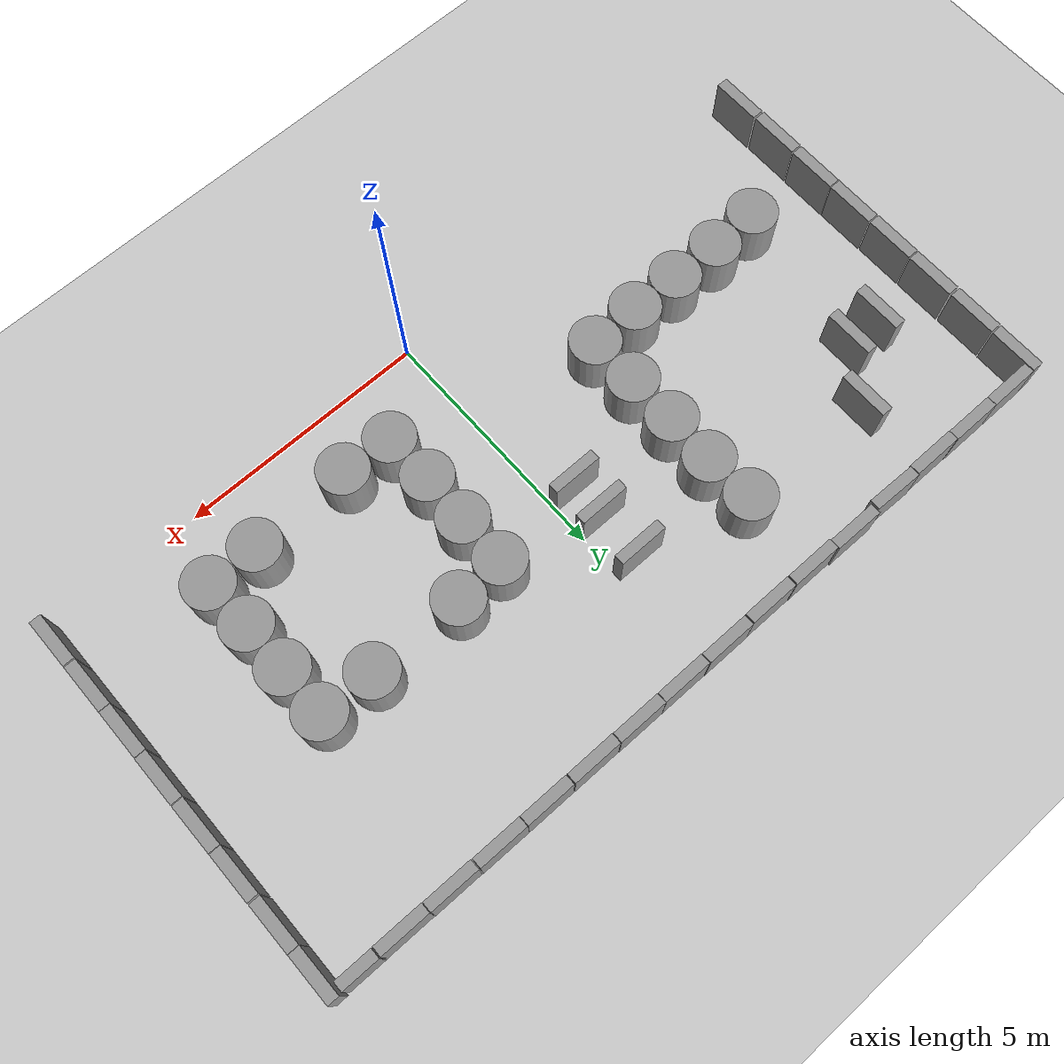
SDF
<sdf version="1.6">
 <world name="default">
  <model name="ground_plane">
   <static>1</static>
   <static>1</static>
   <link name="link">
    <collision name="collision">
     <geometry><plane><normal>0 0 1</normal><size>100 100</size></plane></geometry>
     <surface><friction><ode><mu>100</mu><mu2>50</mu2></ode></friction></surface>
    </collision>
    <visual name="visual">
     <cast_shadows>0</cast_shadows>
     <geometry><plane><normal>0 0 1</normal><size>100 100</size></plane></geometry>
     <material>
      <script><uri>file://media/materials/scripts/gazebo.material</uri><name>Gazebo/Grey</name></script>
     </material>
    </visual>
   </link>
  </model>
  <model name="unit_box_clone">
   <pose>-7.49845 8.11988 0.5 0 -0 0.000178</pose>
   <link name="link">
    <inertial>
     <mass>1</mass>
     <inertia>
      <ixx>0.166667</ixx>
      <ixy>0</ixy>
      <ixz>0</ixz>
      <iyy>0.166667</iyy>
      <iyz>0</iyz>
      <izz>0.166667</izz>
     </inertia>
    </inertial>
    <collision name="collision"><geometry><box><size>1 0.210541 1</size></box></geometry></collision>
    <visual name="visual">
     <geometry><box><size>1 0.210541 1</size></box></geometry>
     <material>
      <script><name>Gazebo/Grey</name><uri>file://media/materials/scripts/gazebo.material</uri></script>
     </material>
    </visual>
   </link>
  </model>
  <model name="unit_box_clone_0">
   <pose>-6.49729 8.11969 0.5 0 -1e-06 -0.002353</pose>
   <link name="link">
    <inertial>
     <mass>1</mass>
     <inertia>
      <ixx>0.166667</ixx>
      <ixy>0</ixy>
      <ixz>0</ixz>
      <iyy>0.166667</iyy>
      <iyz>0</iyz>
      <izz>0.166667</izz>
     </inertia>
    </inertial>
    <collision name="collision"><geometry><box><size>1 0.210541 1</size></box></geometry></collision>
    <visual name="visual">
     <geometry><box><size>1 0.210541 1</size></box></geometry>
     <material>
      <script><name>Gazebo/Grey</name><uri>file://media/materials/scripts/gazebo.material</uri></script>
     </material>
    </visual>
   </link>
  </model>
  <model name="unit_box_clone_1">
   <pose>-5.49732 8.10842 0.5 0 0 -0.002354</pose>
   <link name="link">
    <inertial>
     <mass>1</mass>
     <inertia>
      <ixx>0.166667</ixx>
      <ixy>0</ixy>
      <ixz>0</ixz>
      <iyy>0.166667</iyy>
      <iyz>0</iyz>
      <izz>0.166667</izz>
     </inertia>
    </inertial>
    <collision name="collision"><geometry><box><size>1 0.210541 1</size></box></geometry></collision>
    <visual name="visual">
     <geometry><box><size>1 0.210541 1</size></box></geometry>
     <material>
      <script><name>Gazebo/Grey</name><uri>file://media/materials/scripts/gazebo.material</uri></script>
     </material>
    </visual>
   </link>
  </model>
  <model name="unit_box_clone_2">
   <pose>-4.49485 8.1106 0.5 -0 -0 -0.02677</pose>
   <link name="link">
    <inertial>
     <mass>1</mass>
     <inertia>
      <ixx>0.166667</ixx>
      <ixy>0</ixy>
      <ixz>0</ixz>
      <iyy>0.166667</iyy>
      <iyz>0</iyz>
      <izz>0.166667</izz>
     </inertia>
    </inertial>
    <collision name="collision"><geometry><box><size>1 0.210541 1</size></box></geometry></collision>
    <visual name="visual">
     <geometry><box><size>1 0.210541 1</size></box></geometry>
     <material>
      <script><name>Gazebo/Grey</name><uri>file://media/materials/scripts/gazebo.material</uri></script>
     </material>
    </visual>
   </link>
  </model>
  <model name="unit_box_clone_3">
   <pose>-3.46835 8.1504 0.5 -1e-06 1e-06 -0.007775</pose>
   <link name="link">
    <inertial>
     <mass>1</mass>
     <inertia>
      <ixx>0.166667</ixx>
      <ixy>0</ixy>
      <ixz>0</ixz>
      <iyy>0.166667</iyy>
      <iyz>0</iyz>
      <izz>0.166667</izz>
     </inertia>
    </inertial>
    <collision name="collision"><geometry><box><size>1 0.210541 1</size></box></geometry></collision>
    <visual name="visual">
     <geometry><box><size>1 0.210541 1</size></box></geometry>
     <material>
      <script><name>Gazebo/Grey</name><uri>file://media/materials/scripts/gazebo.material</uri></script>
     </material>
    </visual>
   </link>
  </model>
  <model name="unit_box_clone_4">
   <pose>-2.46316 8.11857 0.5 0 -0 0.000178</pose>
   <link name="link">
    <inertial>
     <mass>1</mass>
     <inertia>
      <ixx>0.166667</ixx>
      <ixy>0</ixy>
      <ixz>0</ixz>
      <iyy>0.166667</iyy>
      <iyz>0</iyz>
      <izz>0.166667</izz>
     </inertia>
    </inertial>
    <collision name="collision"><geometry><box><size>1 0.210541 1</size></box></geometry></collision>
    <visual name="visual">
     <geometry><box><size>1 0.210541 1</size></box></geometry>
     <material>
      <script><name>Gazebo/Grey</name><uri>file://media/materials/scripts/gazebo.material</uri></script>
     </material>
    </visual>
   </link>
  </model>
  <model name="unit_box_clone_5">
   <pose>-1.44425 8.11191 0.5 0 -0 0.000178</pose>
   <link name="link">
    <inertial>
     <mass>1</mass>
     <inertia>
      <ixx>0.166667</ixx>
      <ixy>0</ixy>
      <ixz>0</ixz>
      <iyy>0.166667</iyy>
      <iyz>0</iyz>
      <izz>0.166667</izz>
     </inertia>
    </inertial>
    <collision name="collision"><geometry><box><size>1 0.210541 1</size></box></geometry></collision>
    <visual name="visual">
     <geometry><box><size>1 0.210541 1</size></box></geometry>
     <material>
      <script><name>Gazebo/Grey</name><uri>file://media/materials/scripts/gazebo.material</uri></script>
     </material>
    </visual>
   </link>
  </model>
  <model name="unit_box_clone_6">
   <pose>-0.418683 8.11856 0.5 0 -0 0.000178</pose>
   <link name="link">
    <inertial>
     <mass>1</mass>
     <inertia>
      <ixx>0.166667</ixx>
      <ixy>0</ixy>
      <ixz>0</ixz>
      <iyy>0.166667</iyy>
      <iyz>0</iyz>
      <izz>0.166667</izz>
     </inertia>
    </inertial>
    <collision name="collision"><geometry><box><size>1 0.210541 1</size></box></geometry></collision>
    <visual name="visual">
     <geometry><box><size>1 0.210541 1</size></box></geometry>
     <material>
      <script><name>Gazebo/Grey</name><uri>file://media/materials/scripts/gazebo.material</uri></script>
     </material>
    </visual>
   </link>
  </model>
  <model name="unit_box_clone_7">
   <pose>0.592836 8.11143 0.5 0 -0 0.000178</pose>
   <link name="link">
    <inertial>
     <mass>1</mass>
     <inertia>
      <ixx>0.166667</ixx>
      <ixy>0</ixy>
      <ixz>0</ixz>
      <iyy>0.166667</iyy>
      <iyz>0</iyz>
      <izz>0.166667</izz>
     </inertia>
    </inertial>
    <collision name="collision"><geometry><box><size>1 0.210541 1</size></box></geometry></collision>
    <visual name="visual">
     <geometry><box><size>1 0.210541 1</size></box></geometry>
     <material>
      <script><name>Gazebo/Grey</name><uri>file://media/materials/scripts/gazebo.material</uri></script>
     </material>
    </visual>
   </link>
  </model>
  <model name="unit_box_clone_8">
   <pose>1.60043 8.10994 0.5 0 -0 0.000178</pose>
   <link name="link">
    <inertial>
     <mass>1</mass>
     <inertia>
      <ixx>0.166667</ixx>
      <ixy>0</ixy>
      <ixz>0</ixz>
      <iyy>0.166667</iyy>
      <iyz>0</iyz>
      <izz>0.166667</izz>
     </inertia>
    </inertial>
    <collision name="collision"><geometry><box><size>1 0.210541 1</size></box></geometry></collision>
    <visual name="visual">
     <geometry><box><size>1 0.210541 1</size></box></geometry>
     <material>
      <script><name>Gazebo/Grey</name><uri>file://media/materials/scripts/gazebo.material</uri></script>
     </material>
    </visual>
   </link>
  </model>
  <model name="unit_box_clone_9">
   <pose>2.60987 8.10275 0.5 0 -0 0.000178</pose>
   <link name="link">
    <inertial>
     <mass>1</mass>
     <inertia>
      <ixx>0.166667</ixx>
      <ixy>0</ixy>
      <ixz>0</ixz>
      <iyy>0.166667</iyy>
      <iyz>0</iyz>
      <izz>0.166667</izz>
     </inertia>
    </inertial>
    <collision name="collision"><geometry><box><size>1 0.210541 1</size></box></geometry></collision>
    <visual name="visual">
     <geometry><box><size>1 0.210541 1</size></box></geometry>
     <material>
      <script><name>Gazebo/Grey</name><uri>file://media/materials/scripts/gazebo.material</uri></script>
     </material>
    </visual>
   </link>
  </model>
  <model name="unit_box_clone_10">
   <pose>3.62649 8.09916 0.5 0 -0 0.000178</pose>
   <link name="link">
    <inertial>
     <mass>1</mass>
     <inertia>
      <ixx>0.166667</ixx>
      <ixy>0</ixy>
      <ixz>0</ixz>
      <iyy>0.166667</iyy>
      <iyz>0</iyz>
      <izz>0.166667</izz>
     </inertia>
    </inertial>
    <collision name="collision"><geometry><box><size>1 0.210541 1</size></box></geometry></collision>
    <visual name="visual">
     <geometry><box><size>1 0.210541 1</size></box></geometry>
     <material>
      <script><name>Gazebo/Grey</name><uri>file://media/materials/scripts/gazebo.material</uri></script>
     </material>
    </visual>
   </link>
  </model>
  <model name="unit_box_clone_11">
   <pose>4.63309 8.09539 0.5 0 0 -0.003434</pose>
   <link name="link">
    <inertial>
     <mass>1</mass>
     <inertia>
      <ixx>0.166667</ixx>
      <ixy>0</ixy>
      <ixz>0</ixz>
      <iyy>0.166667</iyy>
      <iyz>0</iyz>
      <izz>0.166667</izz>
     </inertia>
    </inertial>
    <collision name="collision"><geometry><box><size>1 0.210541 1</size></box></geometry></collision>
    <visual name="visual">
     <geometry><box><size>1 0.210541 1</size></box></geometry>
     <material>
      <script><name>Gazebo/Grey</name><uri>file://media/materials/scripts/gazebo.material</uri></script>
     </material>
    </visual>
   </link>
  </model>
  <model name="unit_box_0_clone_0">
   <pose>8.11522 6.68458 0.5 -0 -0 -0.000239</pose>
   <link name="link">
    <inertial>
     <mass>1</mass>
     <inertia>
      <ixx>0.166667</ixx>
      <ixy>0</ixy>
      <ixz>0</ixz>
      <iyy>0.166667</iyy>
      <iyz>0</iyz>
      <izz>0.166667</izz>
     </inertia>
    </inertial>
    <collision name="collision"><geometry><box><size>0.230819 1 1</size></box></geometry></collision>
    <visual name="visual">
     <geometry><box><size>0.230819 1 1</size></box></geometry>
     <material>
      <script><name>Gazebo/Grey</name><uri>file://media/materials/scripts/gazebo.material</uri></script>
     </material>
    </visual>
   </link>
  </model>
  <model name="unit_box_0_clone_1">
   <pose>8.11915 5.6517 0.5 0 -0 0.000138</pose>
   <link name="link">
    <inertial>
     <mass>1</mass>
     <inertia>
      <ixx>0.166667</ixx>
      <ixy>0</ixy>
      <ixz>0</ixz>
      <iyy>0.166667</iyy>
      <iyz>0</iyz>
      <izz>0.166667</izz>
     </inertia>
    </inertial>
    <collision name="collision"><geometry><box><size>0.230819 1 1</size></box></geometry></collision>
    <visual name="visual">
     <geometry><box><size>0.230819 1 1</size></box></geometry>
     <material>
      <script><name>Gazebo/Grey</name><uri>file://media/materials/scripts/gazebo.material</uri></script>
     </material>
    </visual>
   </link>
  </model>
  <model name="unit_box_0_clone_2">
   <pose>8.11914 4.64016 0.5 0 -0 0.000232</pose>
   <link name="link">
    <inertial>
     <mass>1</mass>
     <inertia>
      <ixx>0.166667</ixx>
      <ixy>0</ixy>
      <ixz>0</ixz>
      <iyy>0.166667</iyy>
      <iyz>0</iyz>
      <izz>0.166667</izz>
     </inertia>
    </inertial>
    <collision name="collision"><geometry><box><size>0.230819 1 1</size></box></geometry></collision>
    <visual name="visual">
     <geometry><box><size>0.230819 1 1</size></box></geometry>
     <material>
      <script><name>Gazebo/Grey</name><uri>file://media/materials/scripts/gazebo.material</uri></script>
     </material>
    </visual>
   </link>
  </model>
  <model name="unit_box_0_clone_3">
   <pose>8.11914 3.62228 0.5 0 -0 0.000213</pose>
   <link name="link">
    <inertial>
     <mass>1</mass>
     <inertia>
      <ixx>0.166667</ixx>
      <ixy>0</ixy>
      <ixz>0</ixz>
      <iyy>0.166667</iyy>
      <iyz>0</iyz>
      <izz>0.166667</izz>
     </inertia>
    </inertial>
    <collision name="collision"><geometry><box><size>0.230819 1 1</size></box></geometry></collision>
    <visual name="visual">
     <geometry><box><size>0.230819 1 1</size></box></geometry>
     <material>
      <script><name>Gazebo/Grey</name><uri>file://media/materials/scripts/gazebo.material</uri></script>
     </material>
    </visual>
   </link>
  </model>
  <model name="unit_box_0_clone_4">
   <pose>8.11332 2.61063 0.5 0 0 -0.001021</pose>
   <link name="link">
    <inertial>
     <mass>1</mass>
     <inertia>
      <ixx>0.166667</ixx>
      <ixy>0</ixy>
      <ixz>0</ixz>
      <iyy>0.166667</iyy>
      <iyz>0</iyz>
      <izz>0.166667</izz>
     </inertia>
    </inertial>
    <collision name="collision"><geometry><box><size>0.230819 1 1</size></box></geometry></collision>
    <visual name="visual">
     <geometry><box><size>0.230819 1 1</size></box></geometry>
     <material>
      <script><name>Gazebo/Grey</name><uri>file://media/materials/scripts/gazebo.material</uri></script>
     </material>
    </visual>
   </link>
  </model>
  <model name="unit_box_0_clone_5">
   <pose>8.11277 1.59919 0.5 0 -0 0.000213</pose>
   <link name="link">
    <inertial>
     <mass>1</mass>
     <inertia>
      <ixx>0.166667</ixx>
      <ixy>0</ixy>
      <ixz>0</ixz>
      <iyy>0.166667</iyy>
      <iyz>0</iyz>
      <izz>0.166667</izz>
     </inertia>
    </inertial>
    <collision name="collision"><geometry><box><size>0.230819 1 1</size></box></geometry></collision>
    <visual name="visual">
     <geometry><box><size>0.230819 1 1</size></box></geometry>
     <material>
      <script><name>Gazebo/Grey</name><uri>file://media/materials/scripts/gazebo.material</uri></script>
     </material>
    </visual>
   </link>
  </model>
  <model name="unit_box_0_clone_6">
   <pose>8.11277 0.574938 0.5 0 -0 0.000213</pose>
   <link name="link">
    <inertial>
     <mass>1</mass>
     <inertia>
      <ixx>0.166667</ixx>
      <ixy>0</ixy>
      <ixz>0</ixz>
      <iyy>0.166667</iyy>
      <iyz>0</iyz>
      <izz>0.166667</izz>
     </inertia>
    </inertial>
    <collision name="collision"><geometry><box><size>0.230819 1 1</size></box></geometry></collision>
    <visual name="visual">
     <geometry><box><size>0.230819 1 1</size></box></geometry>
     <material>
      <script><name>Gazebo/Grey</name><uri>file://media/materials/scripts/gazebo.material</uri></script>
     </material>
    </visual>
   </link>
  </model>
  <model name="unit_box_0_clone_4_clone">
   <pose>-8.12647 7.71769 0.5 0 -0 0.000213</pose>
   <link name="link">
    <inertial>
     <mass>1</mass>
     <inertia>
      <ixx>0.166667</ixx>
      <ixy>0</ixy>
      <ixz>0</ixz>
      <iyy>0.166667</iyy>
      <iyz>0</iyz>
      <izz>0.166667</izz>
     </inertia>
    </inertial>
    <collision name="collision"><geometry><box><size>0.230819 1 1</size></box></geometry></collision>
    <visual name="visual">
     <geometry><box><size>0.230819 1 1</size></box></geometry>
     <material>
      <script><name>Gazebo/Grey</name><uri>file://media/materials/scripts/gazebo.material</uri></script>
     </material>
    </visual>
   </link>
  </model>
  <model name="unit_box_0_clone_4_clone_0">
   <pose>-8.13281 6.68715 0.5 0 -0 0.000213</pose>
   <link name="link">
    <inertial>
     <mass>1</mass>
     <inertia>
      <ixx>0.166667</ixx>
      <ixy>0</ixy>
      <ixz>0</ixz>
      <iyy>0.166667</iyy>
      <iyz>0</iyz>
      <izz>0.166667</izz>
     </inertia>
    </inertial>
    <collision name="collision"><geometry><box><size>0.230819 1 1</size></box></geometry></collision>
    <visual name="visual">
     <geometry><box><size>0.230819 1 1</size></box></geometry>
     <material>
      <script><name>Gazebo/Grey</name><uri>file://media/materials/scripts/gazebo.material</uri></script>
     </material>
    </visual>
   </link>
  </model>
  <model name="unit_box_0_clone_4_clone_1">
   <pose>-8.12606 5.64722 0.5 0 -0 0.000213</pose>
   <link name="link">
    <inertial>
     <mass>1</mass>
     <inertia>
      <ixx>0.166667</ixx>
      <ixy>0</ixy>
      <ixz>0</ixz>
      <iyy>0.166667</iyy>
      <iyz>0</iyz>
      <izz>0.166667</izz>
     </inertia>
    </inertial>
    <collision name="collision"><geometry><box><size>0.230819 1 1</size></box></geometry></collision>
    <visual name="visual">
     <geometry><box><size>0.230819 1 1</size></box></geometry>
     <material>
      <script><name>Gazebo/Grey</name><uri>file://media/materials/scripts/gazebo.material</uri></script>
     </material>
    </visual>
   </link>
  </model>
  <model name="unit_box_0_clone_4_clone_2">
   <pose>-8.12607 4.6208 0.5 0 -0 0.000213</pose>
   <link name="link">
    <inertial>
     <mass>1</mass>
     <inertia>
      <ixx>0.166667</ixx>
      <ixy>0</ixy>
      <ixz>0</ixz>
      <iyy>0.166667</iyy>
      <iyz>0</iyz>
      <izz>0.166667</izz>
     </inertia>
    </inertial>
    <collision name="collision"><geometry><box><size>0.230819 1 1</size></box></geometry></collision>
    <visual name="visual">
     <geometry><box><size>0.230819 1 1</size></box></geometry>
     <material>
      <script><name>Gazebo/Grey</name><uri>file://media/materials/scripts/gazebo.material</uri></script>
     </material>
    </visual>
   </link>
  </model>
  <model name="unit_box_0_clone_4_clone_3">
   <pose>-8.11932 3.59437 0.5 0 -0 0.000213</pose>
   <link name="link">
    <inertial>
     <mass>1</mass>
     <inertia>
      <ixx>0.166667</ixx>
      <ixy>0</ixy>
      <ixz>0</ixz>
      <iyy>0.166667</iyy>
      <iyz>0</iyz>
      <izz>0.166667</izz>
     </inertia>
    </inertial>
    <collision name="collision"><geometry><box><size>0.230819 1 1</size></box></geometry></collision>
    <visual name="visual">
     <geometry><box><size>0.230819 1 1</size></box></geometry>
     <material>
      <script><name>Gazebo/Grey</name><uri>file://media/materials/scripts/gazebo.material</uri></script>
     </material>
    </visual>
   </link>
  </model>
  <model name="unit_box_0_clone_4_clone_4">
   <pose>-8.11932 2.57471 0.5 0 -0 0.000213</pose>
   <link name="link">
    <inertial>
     <mass>1</mass>
     <inertia>
      <ixx>0.166667</ixx>
      <ixy>0</ixy>
      <ixz>0</ixz>
      <iyy>0.166667</iyy>
      <iyz>0</iyz>
      <izz>0.166667</izz>
     </inertia>
    </inertial>
    <collision name="collision"><geometry><box><size>0.230819 1 1</size></box></geometry></collision>
    <visual name="visual">
     <geometry><box><size>0.230819 1 1</size></box></geometry>
     <material>
      <script><name>Gazebo/Grey</name><uri>file://media/materials/scripts/gazebo.material</uri></script>
     </material>
    </visual>
   </link>
  </model>
  <model name="unit_box_0_clone_4_clone_5">
   <pose>-8.12608 1.54157 0.5 0 -0 0.000213</pose>
   <link name="link">
    <inertial>
     <mass>1</mass>
     <inertia>
      <ixx>0.166667</ixx>
      <ixy>0</ixy>
      <ixz>0</ixz>
      <iyy>0.166667</iyy>
      <iyz>0</iyz>
      <izz>0.166667</izz>
     </inertia>
    </inertial>
    <collision name="collision"><geometry><box><size>0.230819 1 1</size></box></geometry></collision>
    <visual name="visual">
     <geometry><box><size>0.230819 1 1</size></box></geometry>
     <material>
      <script><name>Gazebo/Grey</name><uri>file://media/materials/scripts/gazebo.material</uri></script>
     </material>
    </visual>
   </link>
  </model>
  <model name="unit_box_0_clone_4_clone_6">
   <pose>-8.11933 0.50163 0.5 0 -0 0.000213</pose>
   <link name="link">
    <inertial>
     <mass>1</mass>
     <inertia>
      <ixx>0.166667</ixx>
      <ixy>0</ixy>
      <ixz>0</ixz>
      <iyy>0.166667</iyy>
      <iyz>0</iyz>
      <izz>0.166667</izz>
     </inertia>
    </inertial>
    <collision name="collision"><geometry><box><size>0.230819 1 1</size></box></geometry></collision>
    <visual name="visual">
     <geometry><box><size>0.230819 1 1</size></box></geometry>
     <material>
      <script><name>Gazebo/Grey</name><uri>file://media/materials/scripts/gazebo.material</uri></script>
     </material>
    </visual>
   </link>
  </model>
  <model name="unit_box_0_clone_0_clone">
   <pose>8.11438 7.69322 0.5 0 -0 0.00012</pose>
   <link name="link">
    <inertial>
     <mass>1</mass>
     <inertia>
      <ixx>0.166667</ixx>
      <ixy>0</ixy>
      <ixz>0</ixz>
      <iyy>0.166667</iyy>
      <iyz>0</iyz>
      <izz>0.166667</izz>
     </inertia>
    </inertial>
    <collision name="collision"><geometry><box><size>0.230819 1 1</size></box></geometry></collision>
    <visual name="visual">
     <geometry><box><size>0.230819 1 1</size></box></geometry>
     <material>
      <script><name>Gazebo/Grey</name><uri>file://media/materials/scripts/gazebo.material</uri></script>
     </material>
    </visual>
   </link>
  </model>
  <model name="unit_box_clone_11_clone">
   <pose>5.6544 8.08375 0.5 1e-06 -1e-06 -0.0029</pose>
   <link name="link">
    <inertial>
     <mass>1</mass>
     <inertia>
      <ixx>0.166667</ixx>
      <ixy>0</ixy>
      <ixz>0</ixz>
      <iyy>0.166667</iyy>
      <iyz>0</iyz>
      <izz>0.166667</izz>
     </inertia>
    </inertial>
    <collision name="collision"><geometry><box><size>1 0.210541 1</size></box></geometry></collision>
    <visual name="visual">
     <geometry><box><size>1 0.210541 1</size></box></geometry>
     <material>
      <script><name>Gazebo/Grey</name><uri>file://media/materials/scripts/gazebo.material</uri></script>
     </material>
    </visual>
   </link>
  </model>
  <model name="unit_box_clone_11_clone_0">
   <pose>6.66439 8.07358 0.5 0 0 -0.003356</pose>
   <link name="link">
    <inertial>
     <mass>1</mass>
     <inertia>
      <ixx>0.166667</ixx>
      <ixy>0</ixy>
      <ixz>0</ixz>
      <iyy>0.166667</iyy>
      <iyz>0</iyz>
      <izz>0.166667</izz>
     </inertia>
    </inertial>
    <collision name="collision"><geometry><box><size>1 0.210541 1</size></box></geometry></collision>
    <visual name="visual">
     <geometry><box><size>1 0.210541 1</size></box></geometry>
     <material>
      <script><name>Gazebo/Grey</name><uri>file://media/materials/scripts/gazebo.material</uri></script>
     </material>
    </visual>
   </link>
  </model>
  <model name="unit_box_clone_11_clone_1_clone">
   <pose>7.56439 8.07324 0.5 0 1e-06 -0.004927</pose>
   <link name="link">
    <inertial>
     <mass>1</mass>
     <inertia>
      <ixx>0.166667</ixx>
      <ixy>0</ixy>
      <ixz>0</ixz>
      <iyy>0.166667</iyy>
      <iyz>0</iyz>
      <izz>0.166667</izz>
     </inertia>
    </inertial>
    <collision name="collision"><geometry><box><size>0.750223 0.210541 1</size></box></geometry></collision>
    <visual name="visual">
     <geometry><box><size>0.750223 0.210541 1</size></box></geometry>
     <material>
      <script><name>Gazebo/Grey</name><uri>file://media/materials/scripts/gazebo.material</uri></script>
     </material>
    </visual>
   </link>
  </model>
  <model name="unit_cylinder_clone_0_clone">
   <pose>1.51726 1.4877 0.499991 -0 -0 -0.002488</pose>
   <link name="link">
    <inertial>
     <mass>1</mass>
     <inertia><ixx>0.145833</ixx><ixy>0</ixy><ixz>0</ixz><iyy>0.145833</iyy><iyz>0</iyz><izz>0.125</izz></inertia>
    </inertial>
    <collision name="collision">
     <geometry><cylinder><radius>0.5</radius><length>1</length></cylinder></geometry>
    </collision>
    <visual name="visual">
     <geometry><cylinder><radius>0.5</radius><length>1</length></cylinder></geometry>
     <material>
      <script><name>Gazebo/Grey</name><uri>file://media/materials/scripts/gazebo.material</uri></script>
     </material>
    </visual>
   </link>
  </model>
  <model name="unit_cylinder_clone_0_clone_clone">
   <pose>1.48343 2.4873 0.499994 -3e-06 -1e-06 0.000788</pose>
   <link name="link">
    <inertial>
     <mass>1</mass>
     <inertia><ixx>0.145833</ixx><ixy>0</ixy><ixz>0</ixz><iyy>0.145833</iyy><iyz>0</iyz><izz>0.125</izz></inertia>
    </inertial>
    <collision name="collision">
     <geometry><cylinder><radius>0.5</radius><length>1</length></cylinder></geometry>
    </collision>
    <visual name="visual">
     <geometry><cylinder><radius>0.5</radius><length>1</length></cylinder></geometry>
     <material>
      <script><name>Gazebo/Grey</name><uri>file://media/materials/scripts/gazebo.material</uri></script>
     </material>
    </visual>
   </link>
  </model>
  <model name="unit_cylinder_clone_0_clone_clone_0">
   <pose>1.51714 3.48917 0.499994 -4e-06 -3e-06 0.000101</pose>
   <link name="link">
    <inertial>
     <mass>1</mass>
     <inertia><ixx>0.145833</ixx><ixy>0</ixy><ixz>0</ixz><iyy>0.145833</iyy><iyz>0</iyz><izz>0.125</izz></inertia>
    </inertial>
    <collision name="collision">
     <geometry><cylinder><radius>0.5</radius><length>1</length></cylinder></geometry>
    </collision>
    <visual name="visual">
     <geometry><cylinder><radius>0.5</radius><length>1</length></cylinder></geometry>
     <material>
      <script><name>Gazebo/Grey</name><uri>file://media/materials/scripts/gazebo.material</uri></script>
     </material>
    </visual>
   </link>
  </model>
  <model name="unit_cylinder_clone_0_clone_clone_1">
   <pose>1.51681 4.48917 0.5 0 0 -0.0001</pose>
   <link name="link">
    <inertial>
     <mass>1</mass>
     <inertia><ixx>0.145833</ixx><ixy>0</ixy><ixz>0</ixz><iyy>0.145833</iyy><iyz>0</iyz><izz>0.125</izz></inertia>
    </inertial>
    <collision name="collision">
     <geometry><cylinder><radius>0.5</radius><length>1</length></cylinder></geometry>
    </collision>
    <visual name="visual">
     <geometry><cylinder><radius>0.5</radius><length>1</length></cylinder></geometry>
     <material>
      <script><name>Gazebo/Grey</name><uri>file://media/materials/scripts/gazebo.material</uri></script>
     </material>
    </visual>
   </link>
  </model>
  <model name="unit_cylinder_clone_0_clone_clone_2">
   <pose>2.51555 1.41016 0.499994 -3e-06 -2e-06 -0.003965</pose>
   <link name="link">
    <inertial>
     <mass>1</mass>
     <inertia><ixx>0.145833</ixx><ixy>0</ixy><ixz>0</ixz><iyy>0.145833</iyy><iyz>0</iyz><izz>0.125</izz></inertia>
    </inertial>
    <collision name="collision">
     <geometry><cylinder><radius>0.5</radius><length>1</length></cylinder></geometry>
    </collision>
    <visual name="visual">
     <geometry><cylinder><radius>0.5</radius><length>1</length></cylinder></geometry>
     <material>
      <script><name>Gazebo/Grey</name><uri>file://media/materials/scripts/gazebo.material</uri></script>
     </material>
    </visual>
   </link>
  </model>
  <model name="unit_cylinder_clone_0_clone_clone_3">
   <pose>4.52533 1.49818 0.499994 -3e-06 -2e-06 0</pose>
   <link name="link">
    <inertial>
     <mass>1</mass>
     <inertia><ixx>0.145833</ixx><ixy>0</ixy><ixz>0</ixz><iyy>0.145833</iyy><iyz>0</iyz><izz>0.125</izz></inertia>
    </inertial>
    <collision name="collision">
     <geometry><cylinder><radius>0.5</radius><length>1</length></cylinder></geometry>
    </collision>
    <visual name="visual">
     <geometry><cylinder><radius>0.5</radius><length>1</length></cylinder></geometry>
     <material>
      <script><name>Gazebo/Grey</name><uri>file://media/materials/scripts/gazebo.material</uri></script>
     </material>
    </visual>
   </link>
  </model>
  <model name="unit_cylinder_clone_0_clone_clone_4">
   <pose>5.54013 1.51656 0.499996 -1e-06 0 -0.000814</pose>
   <link name="link">
    <inertial>
     <mass>1</mass>
     <inertia><ixx>0.145833</ixx><ixy>0</ixy><ixz>0</ixz><iyy>0.145833</iyy><iyz>0</iyz><izz>0.125</izz></inertia>
    </inertial>
    <collision name="collision">
     <geometry><cylinder><radius>0.5</radius><length>1</length></cylinder></geometry>
    </collision>
    <visual name="visual">
     <geometry><cylinder><radius>0.5</radius><length>1</length></cylinder></geometry>
     <material>
      <script><name>Gazebo/Grey</name><uri>file://media/materials/scripts/gazebo.material</uri></script>
     </material>
    </visual>
   </link>
  </model>
  <model name="unit_cylinder_clone_0_clone_clone_5">
   <pose>5.48689 2.51519 0.499997 3e-06 2e-06 0.000368</pose>
   <link name="link">
    <inertial>
     <mass>1</mass>
     <inertia><ixx>0.145833</ixx><ixy>0</ixy><ixz>0</ixz><iyy>0.145833</iyy><iyz>0</iyz><izz>0.125</izz></inertia>
    </inertial>
    <collision name="collision">
     <geometry><cylinder><radius>0.5</radius><length>1</length></cylinder></geometry>
    </collision>
    <visual name="visual">
     <geometry><cylinder><radius>0.5</radius><length>1</length></cylinder></geometry>
     <material>
      <script><name>Gazebo/Grey</name><uri>file://media/materials/scripts/gazebo.material</uri></script>
     </material>
    </visual>
   </link>
  </model>
  <model name="unit_cylinder_clone_0_clone_clone_6">
   <pose>5.488 3.51524 0.499993 -3e-06 1e-06 0.000266</pose>
   <link name="link">
    <inertial>
     <mass>1</mass>
     <inertia><ixx>0.145833</ixx><ixy>0</ixy><ixz>0</ixz><iyy>0.145833</iyy><iyz>0</iyz><izz>0.125</izz></inertia>
    </inertial>
    <collision name="collision">
     <geometry><cylinder><radius>0.5</radius><length>1</length></cylinder></geometry>
    </collision>
    <visual name="visual">
     <geometry><cylinder><radius>0.5</radius><length>1</length></cylinder></geometry>
     <material>
      <script><name>Gazebo/Grey</name><uri>file://media/materials/scripts/gazebo.material</uri></script>
     </material>
    </visual>
   </link>
  </model>
  <model name="unit_cylinder_clone_0_clone_clone_7">
   <pose>5.48818 4.51568 0.5 0 -0 0.001132</pose>
   <link name="link">
    <inertial>
     <mass>1</mass>
     <inertia><ixx>0.145833</ixx><ixy>0</ixy><ixz>0</ixz><iyy>0.145833</iyy><iyz>0</iyz><izz>0.125</izz></inertia>
    </inertial>
    <collision name="collision">
     <geometry><cylinder><radius>0.5</radius><length>1</length></cylinder></geometry>
    </collision>
    <visual name="visual">
     <geometry><cylinder><radius>0.5</radius><length>1</length></cylinder></geometry>
     <material>
      <script><name>Gazebo/Grey</name><uri>file://media/materials/scripts/gazebo.material</uri></script>
     </material>
    </visual>
   </link>
  </model>
  <model name="unit_cylinder_clone_0_clone_clone_8">
   <pose>2.51446 4.55792 0.49999 0 -0 -6.8e-05</pose>
   <link name="link">
    <inertial>
     <mass>1</mass>
     <inertia><ixx>0.145833</ixx><ixy>0</ixy><ixz>0</ixz><iyy>0.145833</iyy><iyz>0</iyz><izz>0.125</izz></inertia>
    </inertial>
    <collision name="collision">
     <geometry><cylinder><radius>0.5</radius><length>1</length></cylinder></geometry>
    </collision>
    <visual name="visual">
     <geometry><cylinder><radius>0.5</radius><length>1</length></cylinder></geometry>
     <material>
      <script><name>Gazebo/Grey</name><uri>file://media/materials/scripts/gazebo.material</uri></script>
     </material>
    </visual>
   </link>
  </model>
  <model name="unit_cylinder_clone_0_clone_clone_9">
   <pose>4.40502 4.5579 0.499997 4e-06 3e-06 -0</pose>
   <link name="link">
    <inertial>
     <mass>1</mass>
     <inertia><ixx>0.145833</ixx><ixy>0</ixy><ixz>0</ixz><iyy>0.145833</iyy><iyz>0</iyz><izz>0.125</izz></inertia>
    </inertial>
    <collision name="collision">
     <geometry><cylinder><radius>0.5</radius><length>1</length></cylinder></geometry>
    </collision>
    <visual name="visual">
     <geometry><cylinder><radius>0.5</radius><length>1</length></cylinder></geometry>
     <material>
      <script><name>Gazebo/Grey</name><uri>file://media/materials/scripts/gazebo.material</uri></script>
     </material>
    </visual>
   </link>
  </model>
  <model name="unit_cylinder_clone_0_clone_clone_22">
   <pose>-2.49486 2.50135 0.5 0 -0 0.000104</pose>
   <link name="link">
    <inertial>
     <mass>1</mass>
     <inertia><ixx>0.145833</ixx><ixy>0</ixy><ixz>0</ixz><iyy>0.145833</iyy><iyz>0</iyz><izz>0.125</izz></inertia>
    </inertial>
    <collision name="collision">
     <geometry><cylinder><radius>0.5</radius><length>1</length></cylinder></geometry>
    </collision>
    <visual name="visual">
     <geometry><cylinder><radius>0.5</radius><length>1</length></cylinder></geometry>
     <material>
      <script><name>Gazebo/Grey</name><uri>file://media/materials/scripts/gazebo.material</uri></script>
     </material>
    </visual>
   </link>
  </model>
  <model name="unit_cylinder_clone_0_clone_clone_23">
   <pose>-2.51011 3.50155 0.5 0 0 -0.0023</pose>
   <link name="link">
    <inertial>
     <mass>1</mass>
     <inertia><ixx>0.145833</ixx><ixy>0</ixy><ixz>0</ixz><iyy>0.145833</iyy><iyz>0</iyz><izz>0.125</izz></inertia>
    </inertial>
    <collision name="collision">
     <geometry><cylinder><radius>0.5</radius><length>1</length></cylinder></geometry>
    </collision>
    <visual name="visual">
     <geometry><cylinder><radius>0.5</radius><length>1</length></cylinder></geometry>
     <material>
      <script><name>Gazebo/Grey</name><uri>file://media/materials/scripts/gazebo.material</uri></script>
     </material>
    </visual>
   </link>
  </model>
  <model name="unit_cylinder_clone_0_clone_clone_24">
   <pose>-2.51056 4.52097 0.5 0 0 -0.00241</pose>
   <link name="link">
    <inertial>
     <mass>1</mass>
     <inertia><ixx>0.145833</ixx><ixy>0</ixy><ixz>0</ixz><iyy>0.145833</iyy><iyz>0</iyz><izz>0.125</izz></inertia>
    </inertial>
    <collision name="collision">
     <geometry><cylinder><radius>0.5</radius><length>1</length></cylinder></geometry>
    </collision>
    <visual name="visual">
     <geometry><cylinder><radius>0.5</radius><length>1</length></cylinder></geometry>
     <material>
      <script><name>Gazebo/Grey</name><uri>file://media/materials/scripts/gazebo.material</uri></script>
     </material>
    </visual>
   </link>
  </model>
  <model name="unit_cylinder_clone_0_clone_clone_25">
   <pose>-2.47871 5.52049 0.499994 -4e-06 -1e-06 -0.002611</pose>
   <link name="link">
    <inertial>
     <mass>1</mass>
     <inertia><ixx>0.145833</ixx><ixy>0</ixy><ixz>0</ixz><iyy>0.145833</iyy><iyz>0</iyz><izz>0.125</izz></inertia>
    </inertial>
    <collision name="collision">
     <geometry><cylinder><radius>0.5</radius><length>1</length></cylinder></geometry>
    </collision>
    <visual name="visual">
     <geometry><cylinder><radius>0.5</radius><length>1</length></cylinder></geometry>
     <material>
      <script><name>Gazebo/Grey</name><uri>file://media/materials/scripts/gazebo.material</uri></script>
     </material>
    </visual>
   </link>
  </model>
  <model name="unit_cylinder_clone_0_clone_clone_26">
   <pose>-3.51621 2.46848 0.499997 -4e-06 -2e-06 -0.002536</pose>
   <link name="link">
    <inertial>
     <mass>1</mass>
     <inertia><ixx>0.145833</ixx><ixy>0</ixy><ixz>0</ixz><iyy>0.145833</iyy><iyz>0</iyz><izz>0.125</izz></inertia>
    </inertial>
    <collision name="collision">
     <geometry><cylinder><radius>0.5</radius><length>1</length></cylinder></geometry>
    </collision>
    <visual name="visual">
     <geometry><cylinder><radius>0.5</radius><length>1</length></cylinder></geometry>
     <material>
      <script><name>Gazebo/Grey</name><uri>file://media/materials/scripts/gazebo.material</uri></script>
     </material>
    </visual>
   </link>
  </model>
  <model name="unit_cylinder_clone_0_clone_clone_27">
   <pose>-4.5161 2.4837 0.499994 -3e-06 -2e-06 -0.002365</pose>
   <link name="link">
    <inertial>
     <mass>1</mass>
     <inertia><ixx>0.145833</ixx><ixy>0</ixy><ixz>0</ixz><iyy>0.145833</iyy><iyz>0</iyz><izz>0.125</izz></inertia>
    </inertial>
    <collision name="collision">
     <geometry><cylinder><radius>0.5</radius><length>1</length></cylinder></geometry>
    </collision>
    <visual name="visual">
     <geometry><cylinder><radius>0.5</radius><length>1</length></cylinder></geometry>
     <material>
      <script><name>Gazebo/Grey</name><uri>file://media/materials/scripts/gazebo.material</uri></script>
     </material>
    </visual>
   </link>
  </model>
  <model name="unit_cylinder_clone_0_clone_clone_28">
   <pose>-5.53031 2.49907 0.499997 1e-06 -1e-06 -0.002544</pose>
   <link name="link">
    <inertial>
     <mass>1</mass>
     <inertia><ixx>0.145833</ixx><ixy>0</ixy><ixz>0</ixz><iyy>0.145833</iyy><iyz>0</iyz><izz>0.125</izz></inertia>
    </inertial>
    <collision name="collision">
     <geometry><cylinder><radius>0.5</radius><length>1</length></cylinder></geometry>
    </collision>
    <visual name="visual">
     <geometry><cylinder><radius>0.5</radius><length>1</length></cylinder></geometry>
     <material>
      <script><name>Gazebo/Grey</name><uri>file://media/materials/scripts/gazebo.material</uri></script>
     </material>
    </visual>
   </link>
  </model>
  <model name="unit_cylinder_clone_0_clone_clone_29">
   <pose>-6.52989 2.46832 0.499992 -3e-06 -4e-06 -0.002494</pose>
   <link name="link">
    <inertial>
     <mass>1</mass>
     <inertia><ixx>0.145833</ixx><ixy>0</ixy><ixz>0</ixz><iyy>0.145833</iyy><iyz>0</iyz><izz>0.125</izz></inertia>
    </inertial>
    <collision name="collision">
     <geometry><cylinder><radius>0.5</radius><length>1</length></cylinder></geometry>
    </collision>
    <visual name="visual">
     <geometry><cylinder><radius>0.5</radius><length>1</length></cylinder></geometry>
     <material>
      <script><name>Gazebo/Grey</name><uri>file://media/materials/scripts/gazebo.material</uri></script>
     </material>
    </visual>
   </link>
  </model>
  <model name="unit_cylinder_clone_0_clone_clone_30">
   <pose>-2.52543 6.51942 0.499991 -0 -0 -0.002592</pose>
   <link name="link">
    <inertial>
     <mass>1</mass>
     <inertia><ixx>0.145833</ixx><ixy>0</ixy><ixz>0</ixz><iyy>0.145833</iyy><iyz>0</iyz><izz>0.125</izz></inertia>
    </inertial>
    <collision name="collision">
     <geometry><cylinder><radius>0.5</radius><length>1</length></cylinder></geometry>
    </collision>
    <visual name="visual">
     <geometry><cylinder><radius>0.5</radius><length>1</length></cylinder></geometry>
     <material>
      <script><name>Gazebo/Grey</name><uri>file://media/materials/scripts/gazebo.material</uri></script>
     </material>
    </visual>
   </link>
  </model>
  <model name="unit_box_clone_15_clone_6_clone_1">
   <pose>-0.479638 5.87811 0.5 0 -0 0.000295</pose>
   <link name="link">
    <inertial>
     <mass>1</mass>
     <inertia>
      <ixx>0.166667</ixx>
      <ixy>0</ixy>
      <ixz>0</ixz>
      <iyy>0.166667</iyy>
      <iyz>0</iyz>
      <izz>0.166667</izz>
     </inertia>
    </inertial>
    <collision name="collision"><geometry><box><size>1 0.210541 1</size></box></geometry></collision>
    <visual name="visual">
     <geometry><box><size>1 0.210541 1</size></box></geometry>
     <material>
      <script><name>Gazebo/Grey</name><uri>file://media/materials/scripts/gazebo.material</uri></script>
     </material>
    </visual>
   </link>
  </model>
  <model name="unit_box_clone_15_clone_6_clone_2">
   <pose>-0.479641 4.88354 0.499999 1e-06 2e-06 0.000274</pose>
   <link name="link">
    <inertial>
     <mass>1</mass>
     <inertia>
      <ixx>0.166667</ixx>
      <ixy>0</ixy>
      <ixz>0</ixz>
      <iyy>0.166667</iyy>
      <iyz>0</iyz>
      <izz>0.166667</izz>
     </inertia>
    </inertial>
    <collision name="collision"><geometry><box><size>1 0.210541 1</size></box></geometry></collision>
    <visual name="visual">
     <geometry><box><size>1 0.210541 1</size></box></geometry>
     <material>
      <script><name>Gazebo/Grey</name><uri>file://media/materials/scripts/gazebo.material</uri></script>
     </material>
    </visual>
   </link>
  </model>
  <model name="unit_box_clone_15_clone_6_clone_3">
   <pose>-0.497096 4.15081 0.499999 -1e-06 -2e-06 0.000292</pose>
   <link name="link">
    <inertial>
     <mass>1</mass>
     <inertia>
      <ixx>0.166667</ixx>
      <ixy>0</ixy>
      <ixz>0</ixz>
      <iyy>0.166667</iyy>
      <iyz>0</iyz>
      <izz>0.166667</izz>
     </inertia>
    </inertial>
    <collision name="collision"><geometry><box><size>1 0.210541 1</size></box></geometry></collision>
    <visual name="visual">
     <geometry><box><size>1 0.210541 1</size></box></geometry>
     <material>
      <script><name>Gazebo/Grey</name><uri>file://media/materials/scripts/gazebo.material</uri></script>
     </material>
    </visual>
   </link>
  </model>
  <model name="unit_box_0_clone_12_clone_1">
   <pose>-6.88658 5.47249 0.5 0 -0 0.000251</pose>
   <link name="link">
    <inertial>
     <mass>1</mass>
     <inertia>
      <ixx>0.166667</ixx>
      <ixy>0</ixy>
      <ixz>0</ixz>
      <iyy>0.166667</iyy>
      <iyz>0</iyz>
      <izz>0.166667</izz>
     </inertia>
    </inertial>
    <collision name="collision"><geometry><box><size>0.230819 1 1</size></box></geometry></collision>
    <visual name="visual">
     <geometry><box><size>0.230819 1 1</size></box></geometry>
     <material>
      <script><name>Gazebo/Grey</name><uri>file://media/materials/scripts/gazebo.material</uri></script>
     </material>
    </visual>
   </link>
  </model>
  <model name="unit_box_0_clone_12_clone_2">
   <pose>-6.14168 5.48942 0.5 -1e-06 1e-06 0.000241</pose>
   <link name="link">
    <inertial>
     <mass>1</mass>
     <inertia>
      <ixx>0.166667</ixx>
      <ixy>0</ixy>
      <ixz>0</ixz>
      <iyy>0.166667</iyy>
      <iyz>0</iyz>
      <izz>0.166667</izz>
     </inertia>
    </inertial>
    <collision name="collision"><geometry><box><size>0.230819 1 1</size></box></geometry></collision>
    <visual name="visual">
     <geometry><box><size>0.230819 1 1</size></box></geometry>
     <material>
      <script><name>Gazebo/Grey</name><uri>file://media/materials/scripts/gazebo.material</uri></script>
     </material>
    </visual>
   </link>
  </model>
  <model name="unit_box_0_clone_12_clone_3">
   <pose>-5.44757 6.52211 0.5 0 -0 0.000231</pose>
   <link name="link">
    <inertial>
     <mass>1</mass>
     <inertia>
      <ixx>0.166667</ixx>
      <ixy>0</ixy>
      <ixz>0</ixz>
      <iyy>0.166667</iyy>
      <iyz>0</iyz>
      <izz>0.166667</izz>
     </inertia>
    </inertial>
    <collision name="collision"><geometry><box><size>0.230819 1 1</size></box></geometry></collision>
    <visual name="visual">
     <geometry><box><size>0.230819 1 1</size></box></geometry>
     <material>
      <script><name>Gazebo/Grey</name><uri>file://media/materials/scripts/gazebo.material</uri></script>
     </material>
    </visual>
   </link>
  </model>
 </world>
</sdf>
